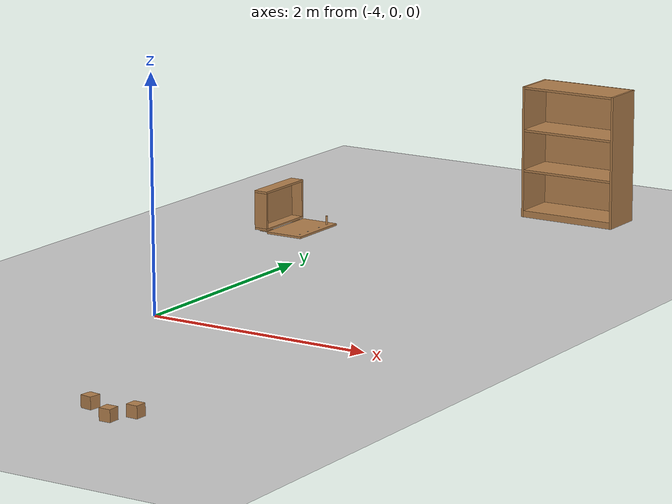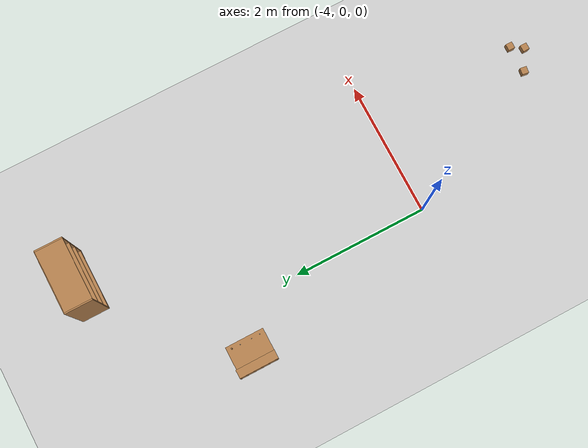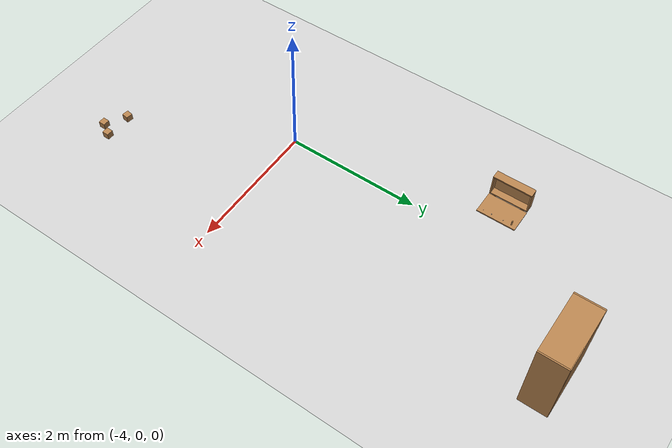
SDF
<sdf version="1.6">
 <world name="default">
  <model name="ground_plane">
   <static>1</static>
   <link name="link">
    <collision name="collision">
     <geometry><plane><normal>0 0 1</normal><size>100 100</size></plane></geometry>
     <surface><friction><ode><mu>100</mu><mu2>50</mu2></ode></friction></surface>
    </collision>
    <visual name="visual">
     <cast_shadows>0</cast_shadows>
     <geometry><plane><normal>0 0 1</normal><size>100 100</size></plane></geometry>
     <material>
      <script><uri>file://media/materials/scripts/gazebo.material</uri><name>Gazebo/Grey</name></script>
     </material>
    </visual>
   </link>
  </model>
  <model name="bookshelf">
   <static>1</static>
   <link name="link">
    <inertial><mass>1</mass></inertial>
    <collision name="back">
     <pose>0 0.005 0.6 0 -0 0</pose>
     <geometry><box><size>0.9 0.01 1.2</size></box></geometry>
    </collision>
    <visual name="visual1">
     <pose>0 0.005 0.6 0 -0 0</pose>
     <geometry><box><size>0.9 0.01 1.2</size></box></geometry>
     <material>
      <script><uri>file://media/materials/scripts/gazebo.material</uri><name>Gazebo/Wood</name></script>
     </material>
    </visual>
    <collision name="left_side">
     <pose>0.45 -0.195 0.6 0 -0 0</pose>
     <geometry><box><size>0.02 0.4 1.2</size></box></geometry>
    </collision>
    <visual name="visual2">
     <pose>0.45 -0.195 0.6 0 -0 0</pose>
     <geometry><box><size>0.02 0.4 1.2</size></box></geometry>
     <material>
      <script><uri>file://media/materials/scripts/gazebo.material</uri><name>Gazebo/Wood</name></script>
     </material>
    </visual>
    <collision name="right_side">
     <pose>-0.45 -0.195 0.6 0 -0 0</pose>
     <geometry><box><size>0.02 0.4 1.2</size></box></geometry>
    </collision>
    <visual name="visual3">
     <pose>-0.45 -0.195 0.6 0 -0 0</pose>
     <geometry><box><size>0.02 0.4 1.2</size></box></geometry>
     <material>
      <script><uri>file://media/materials/scripts/gazebo.material</uri><name>Gazebo/Wood</name></script>
     </material>
    </visual>
    <collision name="bottom">
     <pose>0 -0.195 0.03 0 -0 0</pose>
     <geometry><box><size>0.88 0.4 0.06</size></box></geometry>
    </collision>
    <visual name="visual4">
     <pose>0 -0.195 0.03 0 -0 0</pose>
     <geometry><box><size>0.88 0.4 0.06</size></box></geometry>
     <material>
      <script><uri>file://media/materials/scripts/gazebo.material</uri><name>Gazebo/Wood</name></script>
     </material>
    </visual>
    <collision name="top">
     <pose>0 -0.195 1.19 0 -0 0</pose>
     <geometry><box><size>0.88 0.4 0.02</size></box></geometry>
    </collision>
    <visual name="visual5">
     <pose>0 -0.195 1.19 0 -0 0</pose>
     <geometry><box><size>0.88 0.4 0.02</size></box></geometry>
     <material>
      <script><uri>file://media/materials/scripts/gazebo.material</uri><name>Gazebo/Wood</name></script>
     </material>
    </visual>
    <collision name="low_shelf">
     <pose>0 -0.195 0.43 0 -0 0</pose>
     <geometry><box><size>0.88 0.4 0.02</size></box></geometry>
    </collision>
    <visual name="visual6">
     <pose>0 -0.195 0.43 0 -0 0</pose>
     <geometry><box><size>0.88 0.4 0.02</size></box></geometry>
     <material>
      <script><uri>file://media/materials/scripts/gazebo.material</uri><name>Gazebo/Wood</name></script>
     </material>
    </visual>
    <collision name="high_shelf">
     <pose>0 -0.195 0.8 0 -0 0</pose>
     <geometry><box><size>0.88 0.4 0.02</size></box></geometry>
    </collision>
    <visual name="visual7">
     <pose>0 -0.195 0.8 0 -0 0</pose>
     <geometry><box><size>0.88 0.4 0.02</size></box></geometry>
     <material>
      <script><uri>file://media/materials/scripts/gazebo.material</uri><name>Gazebo/Wood</name></script>
     </material>
    </visual>
   </link>
   <pose>-2.72611 4.9059 0 0 -0 0</pose>
  </model>
  <model name="wooden_case_wooden_peg">
   <link name="wooden_case::base">
    <pose>0 0 0.024 0 -0 0</pose>
    <inertial>
     <pose>-0.022184 0 0.171592 0 -0 0</pose>
     <mass>3.96264</mass>
     <inertia>
      <ixx>0.213536</ixx>
      <ixy>0</ixy>
      <ixz>0.000779377</ixz>
      <iyy>0.0708943</iyy>
      <iyz>0</iyz>
      <izz>0.154604</izz>
     </inertia>
    </inertial>
    <collision name="collision_back">
     <pose>-0.053975 0 0.1778 0 -0 0</pose>
     <geometry><box><size>0.01905 0.5461 0.3175</size></box></geometry>
     <surface>
      <contact>
       <poissons_ratio>0.347</poissons_ratio>
       <elastic_modulus>8.8e+09</elastic_modulus>
       <ode><kp>100000</kp><kd>100</kd><max_vel>100</max_vel><min_depth>0.001</min_depth></ode>
      </contact>
      <friction>
       <torsional>
        <coefficient>1</coefficient>
        <use_patch_radius>0</use_patch_radius>
        <surface_radius>0.01</surface_radius>
       </torsional>
      </friction>
     </surface>
    </collision>
    <visual name="visual_back">
     <pose>-0.053975 0 0.1778 0 -0 0</pose>
     <geometry><box><size>0.01905 0.5461 0.3175</size></box></geometry>
     <material>
      <script><uri>file://media/materials/scripts/gazebo.material</uri><name>Gazebo/Wood</name></script>
     </material>
    </visual>
    <collision name="collision_bottom">
     <pose>0 0 0.009525 0 -0 0</pose>
     <geometry><box><size>0.127 0.5842 0.01905</size></box></geometry>
     <surface>
      <contact>
       <poissons_ratio>0.347</poissons_ratio>
       <elastic_modulus>8.8e+09</elastic_modulus>
       <ode><kp>100000</kp><kd>100</kd><max_vel>100</max_vel><min_depth>0.001</min_depth></ode>
      </contact>
      <friction>
       <torsional>
        <coefficient>1</coefficient>
        <use_patch_radius>0</use_patch_radius>
        <surface_radius>0.01</surface_radius>
       </torsional>
      </friction>
     </surface>
    </collision>
    <visual name="visual_bottom">
     <pose>0 0 0.009525 0 -0 0</pose>
     <geometry><box><size>0.127 0.5842 0.01905</size></box></geometry>
     <material>
      <script><uri>file://media/materials/scripts/gazebo.material</uri><name>Gazebo/Wood</name></script>
     </material>
    </visual>
    <collision name="collision_top">
     <pose>0 0 0.346075 0 -0 0</pose>
     <geometry><box><size>0.127 0.5842 0.01905</size></box></geometry>
     <surface>
      <contact>
       <poissons_ratio>0.347</poissons_ratio>
       <elastic_modulus>8.8e+09</elastic_modulus>
       <ode><kp>100000</kp><kd>100</kd><max_vel>100</max_vel><min_depth>0.001</min_depth></ode>
      </contact>
      <friction>
       <torsional>
        <coefficient>1</coefficient>
        <use_patch_radius>0</use_patch_radius>
        <surface_radius>0.01</surface_radius>
       </torsional>
      </friction>
     </surface>
    </collision>
    <visual name="visual_top">
     <pose>0 0 0.346075 0 -0 0</pose>
     <geometry><box><size>0.127 0.5842 0.01905</size></box></geometry>
     <material>
      <script><uri>file://media/materials/scripts/gazebo.material</uri><name>Gazebo/Wood</name></script>
     </material>
    </visual>
    <collision name="collision_left">
     <pose>0 -0.282575 0.1778 0 -0 0</pose>
     <geometry><box><size>0.127 0.01905 0.3175</size></box></geometry>
     <surface>
      <contact>
       <poissons_ratio>0.347</poissons_ratio>
       <elastic_modulus>8.8e+09</elastic_modulus>
       <ode><kp>100000</kp><kd>100</kd><max_vel>100</max_vel><min_depth>0.001</min_depth></ode>
      </contact>
      <friction>
       <torsional>
        <coefficient>1</coefficient>
        <use_patch_radius>0</use_patch_radius>
        <surface_radius>0.01</surface_radius>
       </torsional>
      </friction>
     </surface>
    </collision>
    <visual name="visual_left">
     <pose>0 -0.282575 0.1778 0 -0 0</pose>
     <geometry><box><size>0.127 0.01905 0.3175</size></box></geometry>
     <material>
      <script><uri>file://media/materials/scripts/gazebo.material</uri><name>Gazebo/Wood</name></script>
     </material>
    </visual>
    <collision name="collision_right">
     <pose>0 0.282575 0.1778 0 -0 0</pose>
     <geometry><box><size>0.127 0.01905 0.3175</size></box></geometry>
     <surface>
      <contact>
       <poissons_ratio>0.347</poissons_ratio>
       <elastic_modulus>8.8e+09</elastic_modulus>
       <ode><kp>100000</kp><kd>100</kd><max_vel>100</max_vel><min_depth>0.001</min_depth></ode>
      </contact>
      <friction>
       <torsional>
        <coefficient>1</coefficient>
        <use_patch_radius>0</use_patch_radius>
        <surface_radius>0.01</surface_radius>
       </torsional>
      </friction>
     </surface>
    </collision>
    <visual name="visual_right">
     <pose>0 0.282575 0.1778 0 -0 0</pose>
     <geometry><box><size>0.127 0.01905 0.3175</size></box></geometry>
     <material>
      <script><uri>file://media/materials/scripts/gazebo.material</uri><name>Gazebo/Wood</name></script>
     </material>
    </visual>
    <collision name="collision_block_left">
     <pose>0.0095 -0.2151 -0.012 0 -0 0</pose>
     <geometry><box><size>0.108 0.05 0.024</size></box></geometry>
     <surface>
      <contact>
       <poissons_ratio>0.347</poissons_ratio>
       <elastic_modulus>8.8e+09</elastic_modulus>
       <ode><kp>100000</kp><kd>100</kd><max_vel>100</max_vel><min_depth>0.001</min_depth></ode>
      </contact>
      <friction>
       <torsional>
        <coefficient>1</coefficient>
        <use_patch_radius>0</use_patch_radius>
        <surface_radius>0.01</surface_radius>
       </torsional>
      </friction>
     </surface>
    </collision>
    <visual name="visual_block_left">
     <pose>0.0095 -0.2151 -0.012 0 -0 0</pose>
     <geometry><box><size>0.108 0.05 0.024</size></box></geometry>
     <material>
      <script><uri>file://media/materials/scripts/gazebo.material</uri><name>Gazebo/Wood</name></script>
     </material>
    </visual>
    <collision name="collision_block_right">
     <pose>0.0095 0.2151 -0.012 0 -0 0</pose>
     <geometry><box><size>0.108 0.05 0.024</size></box></geometry>
     <surface>
      <contact>
       <poissons_ratio>0.347</poissons_ratio>
       <elastic_modulus>8.8e+09</elastic_modulus>
       <ode><kp>100000</kp><kd>100</kd><max_vel>100</max_vel><min_depth>0.001</min_depth></ode>
      </contact>
      <friction>
       <torsional>
        <coefficient>1</coefficient>
        <use_patch_radius>0</use_patch_radius>
        <surface_radius>0.01</surface_radius>
       </torsional>
      </friction>
     </surface>
    </collision>
    <visual name="visual_block_right">
     <pose>0.0095 0.2151 -0.012 0 -0 0</pose>
     <geometry><box><size>0.108 0.05 0.024</size></box></geometry>
     <material>
      <script><uri>file://media/materials/scripts/gazebo.material</uri><name>Gazebo/Wood</name></script>
     </material>
    </visual>
   </link>
   <link name="wooden_case::lid">
    <pose>0.243775 0 0.009525 0 -0 0</pose>
    <inertial>
     <mass>1.97874</mass>
     <inertia>
      <ixx>0.0563367</ixx>
      <ixy>0</ixy>
      <ixz>0</ixz>
      <iyy>0.020911</iyy>
      <iyz>0</iyz>
      <izz>0.0771281</izz>
     </inertia>
    </inertial>
    <collision name="collision">
     <geometry><box><size>0.3556 0.5842 0.01905</size></box></geometry>
     <surface>
      <contact>
       <poissons_ratio>0.347</poissons_ratio>
       <elastic_modulus>8.8e+09</elastic_modulus>
       <ode><kp>100000</kp><kd>100</kd><max_vel>100</max_vel><min_depth>0.001</min_depth></ode>
      </contact>
      <friction>
       <torsional>
        <coefficient>1</coefficient>
        <use_patch_radius>0</use_patch_radius>
        <surface_radius>0.01</surface_radius>
       </torsional>
      </friction>
     </surface>
    </collision>
    <visual name="visual">
     <geometry><box><size>0.3556 0.5842 0.01905</size></box></geometry>
     <material>
      <script><uri>file://media/materials/scripts/gazebo.material</uri><name>Gazebo/Wood</name></script>
     </material>
    </visual>
    <visual name="tee_nut_1">
     <pose>0.122 -0.216 0 0 -0 0</pose>
     <geometry><cylinder><radius>0.00635</radius><length>0.0192405</length></cylinder></geometry>
     <material>
      <script><uri>file://media/materials/scripts/gazebo.material</uri><name>Gazebo/Grey</name></script>
     </material>
    </visual>
    <visual name="tee_nut_2">
     <pose>0.122 -0.088 0 0 -0 0</pose>
     <geometry><cylinder><radius>0.00635</radius><length>0.0192405</length></cylinder></geometry>
     <material>
      <script><uri>file://media/materials/scripts/gazebo.material</uri><name>Gazebo/Grey</name></script>
     </material>
    </visual>
    <visual name="tee_nut_3">
     <pose>0.122 0.088 0 0 -0 0</pose>
     <geometry><cylinder><radius>0.00635</radius><length>0.0192405</length></cylinder></geometry>
     <material>
      <script><uri>file://media/materials/scripts/gazebo.material</uri><name>Gazebo/Grey</name></script>
     </material>
    </visual>
    <visual name="tee_nut_4">
     <pose>0.122 0.216 0 0 -0 0</pose>
     <geometry><cylinder><radius>0.00635</radius><length>0.0192405</length></cylinder></geometry>
     <material>
      <script><uri>file://media/materials/scripts/gazebo.material</uri><name>Gazebo/Grey</name></script>
     </material>
    </visual>
   </link>
   <joint name="wooden_case::lid_hinge" type="revolute">
    <pose>-0.1778 0 0.01905 0 -0 0</pose>
    <parent>wooden_case::base</parent>
    <child>wooden_case::lid</child>
    <axis>
     <xyz>0 1 0</xyz>
     <limit><upper>0.523599</upper><lower>-1.5708</lower></limit>
     <use_parent_model_frame>0</use_parent_model_frame>
     <dynamics><spring_reference>0</spring_reference><spring_stiffness>0</spring_stiffness></dynamics>
    </axis>
   </joint>
   <link name="peg::link">
    <pose>0.365774 0.216 0.05905 0 -0 0</pose>
    <inertial>
     <mass>0.0175</mass>
     <inertia>
      <ixx>9.74923e-06</ixx>
      <ixy>0</ixy>
      <ixz>0</ixz>
      <iyy>9.74923e-06</iyy>
      <iyz>0</iyz>
      <izz>8.31797e-07</izz>
     </inertia>
    </inertial>
    <collision name="collision">
     <geometry><cylinder><radius>0.00975</radius><length>0.08</length></cylinder></geometry>
     <surface>
      <contact>
       <poissons_ratio>0.347</poissons_ratio>
       <elastic_modulus>8.8e+09</elastic_modulus>
       <ode><kp>100000</kp><kd>100</kd><max_vel>100</max_vel><min_depth>0.001</min_depth></ode>
      </contact>
      <friction>
       <torsional>
        <coefficient>1</coefficient>
        <use_patch_radius>0</use_patch_radius>
        <surface_radius>0.01</surface_radius>
       </torsional>
      </friction>
     </surface>
    </collision>
    <visual name="visual">
     <geometry><cylinder><radius>0.00975</radius><length>0.08</length></cylinder></geometry>
     <material>
      <script><uri>file://media/materials/scripts/gazebo.material</uri><name>Gazebo/Wood</name></script>
     </material>
    </visual>
   </link>
   <joint name="case_peg" type="revolute">
    <child>peg::link</child>
    <parent>wooden_case::lid</parent>
    <axis>
     <xyz>0 0 1</xyz>
     <limit><upper>0</upper><lower>0</lower></limit>
     <use_parent_model_frame>0</use_parent_model_frame>
     <dynamics><spring_reference>0</spring_reference><spring_stiffness>0</spring_stiffness></dynamics>
    </axis>
   </joint>
   <pose>-4.84407 3.05023 -0.001057 -1e-06 -0.000429 0</pose>
  </model>
  <model name="wood_cube_10cm">
   <link name="link">
    <pose>0 0 0.05 0 -0 0</pose>
    <inertial>
     <mass>0.5167</mass>
     <inertia>
      <ixx>0.000861167</ixx>
      <ixy>0</ixy>
      <ixz>0</ixz>
      <iyy>0.000861167</iyy>
      <iyz>0</iyz>
      <izz>0.000861167</izz>
     </inertia>
    </inertial>
    <collision name="collision">
     <geometry><box><size>0.1 0.1 0.1</size></box></geometry>
     <surface>
      <contact>
       <poissons_ratio>0.347</poissons_ratio>
       <elastic_modulus>8.8e+09</elastic_modulus>
       <ode><kp>100000</kp><kd>100</kd><max_vel>100</max_vel><min_depth>0.001</min_depth></ode>
      </contact>
      <friction>
       <torsional>
        <coefficient>1</coefficient>
        <use_patch_radius>0</use_patch_radius>
        <surface_radius>0.01</surface_radius>
       </torsional>
      </friction>
     </surface>
    </collision>
    <visual name="visual">
     <geometry><box><size>0.1 0.1 0.1</size></box></geometry>
     <material>
      <script><uri>file://media/materials/scripts/gazebo.material</uri><name>Gazebo/Wood</name></script>
     </material>
    </visual>
   </link>
   <pose>-2.91258 -2.23393 0.048987 1.5708 -0 -0.140809</pose>
  </model>
  <model name="wood_cube_10cm_1">
   <link name="link">
    <pose>0 0 0.05 0 -0 0</pose>
    <inertial>
     <mass>0.5167</mass>
     <inertia>
      <ixx>0.000861167</ixx>
      <ixy>0</ixy>
      <ixz>0</ixz>
      <iyy>0.000861167</iyy>
      <iyz>0</iyz>
      <izz>0.000861167</izz>
     </inertia>
    </inertial>
    <collision name="collision">
     <geometry><box><size>0.1 0.1 0.1</size></box></geometry>
     <surface>
      <contact>
       <poissons_ratio>0.347</poissons_ratio>
       <elastic_modulus>8.8e+09</elastic_modulus>
       <ode><kp>100000</kp><kd>100</kd><max_vel>100</max_vel><min_depth>0.001</min_depth></ode>
      </contact>
      <friction>
       <torsional>
        <coefficient>1</coefficient>
        <use_patch_radius>0</use_patch_radius>
        <surface_radius>0.01</surface_radius>
       </torsional>
      </friction>
     </surface>
    </collision>
    <visual name="visual">
     <geometry><box><size>0.1 0.1 0.1</size></box></geometry>
     <material>
      <script><uri>file://media/materials/scripts/gazebo.material</uri><name>Gazebo/Wood</name></script>
     </material>
    </visual>
   </link>
   <pose>-2.50545 -2.28897 -0.001013 0 -0 -1.5954</pose>
  </model>
  <model name="wood_cube_10cm_3">
   <link name="link">
    <pose>0 0 0.05 0 -0 0</pose>
    <inertial>
     <mass>0.5167</mass>
     <inertia>
      <ixx>0.000861167</ixx>
      <ixy>0</ixy>
      <ixz>0</ixz>
      <iyy>0.000861167</iyy>
      <iyz>0</iyz>
      <izz>0.000861167</izz>
     </inertia>
    </inertial>
    <collision name="collision">
     <geometry><box><size>0.1 0.1 0.1</size></box></geometry>
     <surface>
      <contact>
       <poissons_ratio>0.347</poissons_ratio>
       <elastic_modulus>8.8e+09</elastic_modulus>
       <ode><kp>100000</kp><kd>100</kd><max_vel>100</max_vel><min_depth>0.001</min_depth></ode>
      </contact>
      <friction>
       <torsional>
        <coefficient>1</coefficient>
        <use_patch_radius>0</use_patch_radius>
        <surface_radius>0.01</surface_radius>
       </torsional>
      </friction>
     </surface>
    </collision>
    <visual name="visual">
     <geometry><box><size>0.1 0.1 0.1</size></box></geometry>
     <material>
      <script><uri>file://media/materials/scripts/gazebo.material</uri><name>Gazebo/Wood</name></script>
     </material>
    </visual>
   </link>
   <pose>-2.61795 -2.46658 -0.001013 0 -0 0</pose>
  </model>
 </world>
</sdf>
